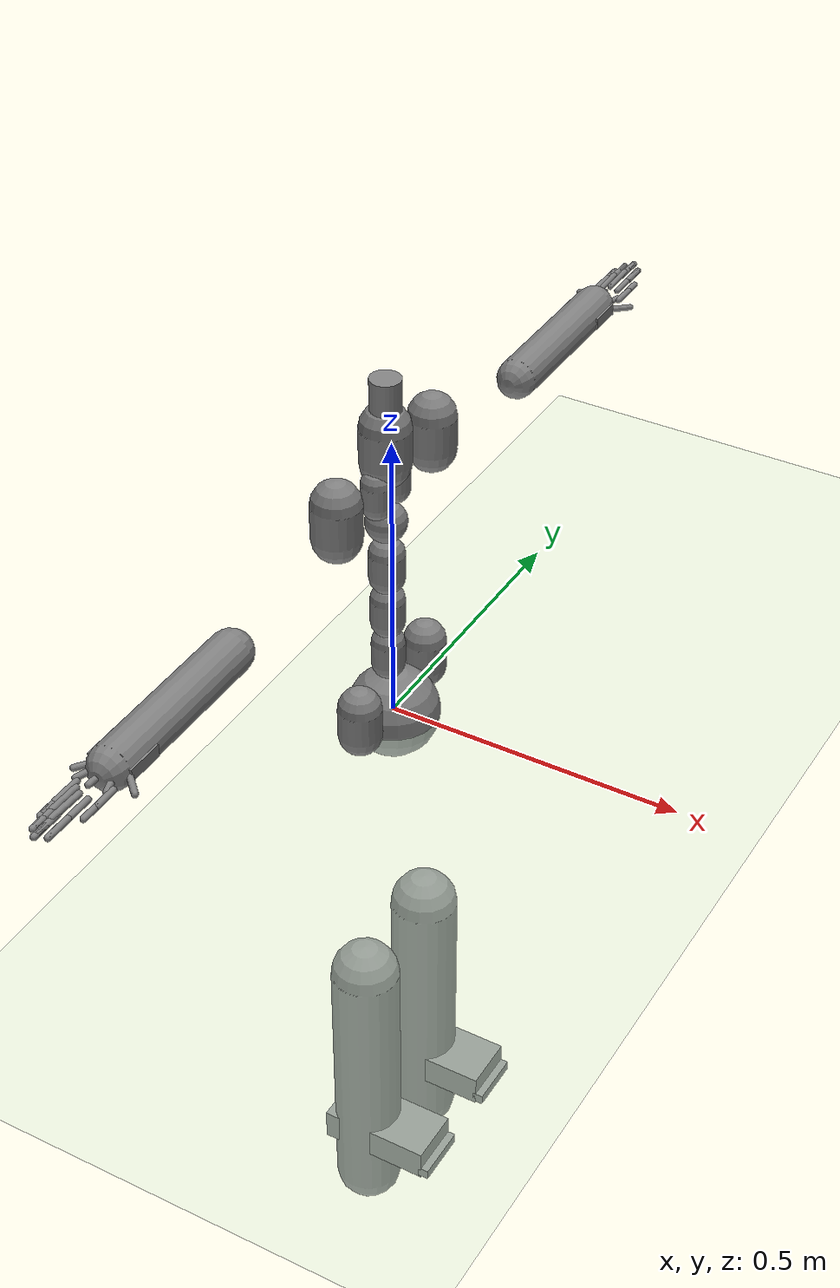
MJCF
<?xml version="1.0" ?>
<mujoco model="humanoid">
  <compiler coordinate="local"/>
  <statistic extent="2" center="0 0 1"/>
  <option timestep="0.00555"/>
  <default>
    <motor ctrlrange="-1 1" ctrllimited="true"/>
    <geom type="capsule" condim="1" friction="1.0 0.05 0.05" solimp=".9 .99 .003" solref=".015 1"/>
    <joint type="hinge" damping="0.1" stiffness="5" armature=".007" limited="true" solimplimit="0 .99 .01"/>
    <site size=".04" group="3"/>
  </default>
  <asset>
    <texture type="skybox" builtin="gradient" rgb1=".4 .5 .6" rgb2="0 0 0" width="100" height="100"/>
    <texture builtin="flat" height="1278" mark="cross" markrgb="1 1 1" name="texgeom" random="0.01" rgb1="0.8 0.6 0.4" rgb2="0.8 0.6 0.4" type="cube" width="127"/>
    <texture builtin="checker" height="100" name="texplane" rgb1="0 0 0" rgb2="0.8 0.8 0.8" type="2d" width="100"/>
    <material name="MatPlane" reflectance="0.5" shininess="1" specular="1" texrepeat="60 60" texture="texplane"/>
    <material name="geom" texture="texgeom" texuniform="true"/>
  </asset>
  <worldbody>
    <light cutoff="100" diffuse="1 1 1" dir="-0 0 -1.3" directional="true" exponent="1" pos="0 0 1.3" specular=".1 .1 .1"/>
    <geom conaffinity="1" condim="3" name="floor" pos="0 0 0" rgba="0.8 0.9 0.8 1" size="100 100 .2" type="plane" material="MatPlane"/>
    <body name="pHipOrigin" pos="0 0 0">
      <freejoint name="pHipOrigin"/>
      <geom type="sphere" contype="1" conaffinity="1" density="4629.6296296296305" size="0.07678" pos="0.0000 0.0000 -0.0000"/>
      <body name="jL5S1" pos="-0.00865186 0 0.07786648">
        <geom type="capsule" contype="1" conaffinity="1" density="1000" fromto="0 0 0.01567 0 0 0.05484" size="0.02742"/>
        <joint name="jL5S1_x" type="hinge" pos="0 0 0" axis="1 0 0" stiffness="500" damping="500" armature="0.02" range="-180.0000 180.0000"/>
        <joint name="jL5S1_y" type="hinge" pos="0 0 0" axis="0 1 0" stiffness="500" damping="500" armature="0.02" range="-180.0000 180.0000"/>
        <joint name="jL5S1_z" type="hinge" pos="0 0 0" axis="0 0 1" stiffness="500" damping="500" armature="0.02" range="-180.0000 180.0000"/>
        <body name="jL4L3" pos="0 0 0.08079895">
          <geom type="capsule" contype="1" conaffinity="1" density="1000" fromto="0 0 0.01616 0 0 0.05656" size="0.02828"/>
          <joint name="jL4L3_x" type="hinge" pos="0 0 0" axis="1 0 0" stiffness="500" damping="500" armature="0.02" range="-180.0000 180.0000"/>
          <joint name="jL4L3_y" type="hinge" pos="0 0 0" axis="0 1 0" stiffness="500" damping="500" armature="0.02" range="-180.0000 180.0000"/>
          <joint name="jL4L3_z" type="hinge" pos="0 0 0" axis="0 0 1" stiffness="500" damping="500" armature="0.02" range="-180.0000 180.0000"/>
          <body name="jL1T12" pos="-0.00064723 0 0.08389296">
            <geom type="capsule" contype="1" conaffinity="1" density="1000" fromto="0 0 0.01678 0 0 0.05873" size="0.02936"/>
            <joint name="jL1T12_x" type="hinge" pos="0 0 0" axis="1 0 0" stiffness="500" damping="500" armature="0.02" range="-180.0000 180.0000"/>
            <joint name="jL1T12_y" type="hinge" pos="0 0 0" axis="0 1 0" stiffness="500" damping="500" armature="0.02" range="-180.0000 180.0000"/>
            <joint name="jL1T12_z" type="hinge" pos="0 0 0" axis="0 0 1" stiffness="500" damping="500" armature="0.02" range="-180.0000 180.0000"/>
            <body name="jT9T8" pos="-0.00064921 0 0.08398600">
              <geom type="sphere" contype="1" conaffinity="1" density="1000" size="0.03360" pos="0.000 0.0000 0.033595"/>
              <joint name="jT9T8_x" type="hinge" pos="0 0 0" axis="1 0 0" stiffness="500" damping="500" armature="0.02" range="-180.0000 180.0000"/>
              <joint name="jT9T8_y" type="hinge" pos="0 0 0" axis="0 1 0" stiffness="500" damping="500" armature="0.02" range="-180.0000 180.0000"/>
              <joint name="jT9T8_z" type="hinge" pos="0 0 0" axis="0 0 1" stiffness="500" damping="500" armature="0.02" range="-180.0000 180.0000"/>
              <body name="jT1C7" pos="0 0 0.11637300">
                <geom type="capsule" contype="1" conaffinity="1" density="1000" fromto="0 0 0.02327 0 0 0.08146" size="0.04073"/>
                <joint name="jT1C7_x" type="hinge" pos="0 0 0" axis="1 0 0" stiffness="500" damping="500" armature="0.02" range="-180.0000 180.0000"/>
                <joint name="jT1C7_y" type="hinge" pos="0 0 0" axis="0 1 0" stiffness="500" damping="500" armature="0.02" range="-180.0000 180.0000"/>
                <joint name="jT1C7_z" type="hinge" pos="0 0 0" axis="0 0 1" stiffness="500" damping="500" armature="0.02" range="-180.0000 180.0000"/>
                <body name="jC1Head" pos="0.00096955 0 0.08218190">
                  <geom type="cylinder" contype="1" conaffinity="1" density="1000" fromto="0 0 0 0 0 0.08219" size="0.02466"/>
                  <joint name="jC1Head_x" type="hinge" pos="0 0 0" axis="1 0 0" stiffness="500" damping="500" armature="0.02" range="-180.0000 180.0000"/>
                  <joint name="jC1Head_y" type="hinge" pos="0 0 0" axis="0 1 0" stiffness="500" damping="500" armature="0.02" range="-180.0000 180.0000"/>
                  <joint name="jC1Head_z" type="hinge" pos="0 0 0" axis="0 0 1" stiffness="500" damping="500" armature="0.02" range="-180.0000 180.0000"/>
                </body>
              </body>
              <body name="jRightT4Shoulder" pos="0 -0.02687128 0.06551808">
                <geom type="capsule" contype="1" conaffinity="1" density="1000" fromto="0 0 0.01416 0 0 0.04957" size="0.02479"/>
                <joint name="jRightT4Shoulder_x" type="hinge" pos="0 0 0" axis="1 0 0" stiffness="500" damping="500" armature="0.02" range="-180.0000 180.0000"/>
                <joint name="jRightT4Shoulder_y" type="hinge" pos="0 0 0" axis="0 1 0" stiffness="500" damping="500" armature="0.02" range="-180.0000 180.0000"/>
                <joint name="jRightT4Shoulder_z" type="hinge" pos="0 0 0" axis="0 0 1" stiffness="500" damping="500" armature="0.02" range="-180.0000 180.0000"/>
                <body name="jRightShoulder" pos="0 -0.11237273 0">
                  <geom type="capsule" contype="1" conaffinity="1" density="1000" fromto="0 0 0.02247 0 0 0.07866" size="0.03933"/>
                  <joint name="jRightShoulder_x" type="hinge" pos="0 0 0" axis="1 0 0" stiffness="500" damping="500" armature="0.02" range="-180.0000 180.0000"/>
                  <joint name="jRightShoulder_y" type="hinge" pos="0 0 0" axis="0 1 0" stiffness="500" damping="500" armature="0.02" range="-180.0000 180.0000"/>
                  <joint name="jRightShoulder_z" type="hinge" pos="0 0 0" axis="0 0 1" stiffness="500" damping="500" armature="0.02" range="-180.0000 180.0000"/>
                  <body name="jRightElbow" pos="0 -0.27885419 0">
                    <geom type="capsule" contype="1" conaffinity="1" density="1000" fromto="0 0 0 0.00000000 -0.27885419 0.00000000" size="0.03346"/>
                    <joint name="jRightElbow_x" type="hinge" pos="0 0 0" axis="1 0 0" stiffness="500" damping="500" armature="0.02" range="-180.0000 180.0000"/>
                    <joint name="jRightElbow_y" type="hinge" pos="0 0 0" axis="0 1 0" stiffness="500" damping="500" armature="0.02" range="-180.0000 180.0000"/>
                    <joint name="jRightElbow_z" type="hinge" pos="0 0 0" axis="0 0 1" stiffness="500" damping="500" armature="0.02" range="-180.0000 180.0000"/>
                    <body name="jRightWrist" pos="0.00010119 -0.25141299 0">
                      <geom density="1000" type="box" pos="0 0 0" size="0.035 0.03 0.01" quat="1.0000 0.0000 0.0000 0.0000"/>
                      <joint name="jRightWrist_x" type="hinge" pos="0 0 0" axis="1 0 0" stiffness="500" damping="500" armature="0.02" range="-180.0000 180.0000"/>
                      <joint name="jRightWrist_y" type="hinge" pos="0 0 0" axis="0 1 0" stiffness="500" damping="500" armature="0.02" range="-180.0000 180.0000"/>
                      <joint name="jRightWrist_z" type="hinge" pos="0 0 0" axis="0 0 1" stiffness="500" damping="500" armature="0.02" range="-180.0000 180.0000"/>
                      <body name="jRightFirstCMC" pos="0.02820307 -0.02703422 -0.00127721">
                        <geom type="capsule" contype="1" conaffinity="1" density="1000" fromto="0 0 0 0.02820307 -0.02703422 -0.00127721" size="0.005"/>
                        <joint name="jRightFirstCMC_x" type="hinge" pos="0 0 0" axis="1 0 0" stiffness="500" damping="500" armature="0.02" range="-180.0000 180.0000"/>
                        <joint name="jRightFirstCMC_y" type="hinge" pos="0 0 0" axis="0 1 0" stiffness="500" damping="500" armature="0.02" range="-180.0000 180.0000"/>
                        <joint name="jRightFirstCMC_z" type="hinge" pos="0 0 0" axis="0 0 1" stiffness="500" damping="500" armature="0.02" range="-180.0000 180.0000"/>
                        <body name="jRightFirstMCP" pos="0.00127837 -0.03607485 0.00076226">
                          <geom type="capsule" contype="1" conaffinity="1" density="1000" fromto="0 0 0 0.00127837 -0.03607485 0.00076226" size="0.005"/>
                          <joint name="jRightFirstMCP_x" type="hinge" pos="0 0 0" axis="1 0 0" stiffness="500" damping="500" armature="0.02" range="-180.0000 180.0000"/>
                          <joint name="jRightFirstMCP_y" type="hinge" pos="0 0 0" axis="0 1 0" stiffness="500" damping="500" armature="0.02" range="-180.0000 180.0000"/>
                          <joint name="jRightFirstMCP_z" type="hinge" pos="0 0 0" axis="0 0 1" stiffness="500" damping="500" armature="0.02" range="-180.0000 180.0000"/>
                          <body name="jRightIP" pos="0 -0.03170414 0">
                            <geom type="capsule" contype="1" conaffinity="1" density="1000" fromto="0 0 0 0.00000000 -0.03170414 0.00000000" size="0.005"/>
                            <joint name="jRightIP_x" type="hinge" pos="0 0 0" axis="1 0 0" stiffness="500" damping="500" armature="0.02" range="-180.0000 180.0000"/>
                            <joint name="jRightIP_y" type="hinge" pos="0 0 0" axis="0 1 0" stiffness="500" damping="500" armature="0.02" range="-180.0000 180.0000"/>
                            <joint name="jRightIP_z" type="hinge" pos="0 0 0" axis="0 0 1" stiffness="500" damping="500" armature="0.02" range="-180.0000 180.0000"/>
                          </body>
                        </body>
                      </body>
                      <body name="jRightSecondCMC" pos="0.01200634 -0.03507873 -0.00061186">
                        <geom type="capsule" contype="1" conaffinity="1" density="1000" fromto="0 0 0 0.01200634 -0.03507873 -0.00061186" size="0.005"/>
                        <joint name="jRightSecondCMC_x" type="hinge" pos="0 0 0" axis="1 0 0" stiffness="500" damping="500" armature="0.02" range="-180.0000 180.0000"/>
                        <joint name="jRightSecondCMC_y" type="hinge" pos="0 0 0" axis="0 1 0" stiffness="500" damping="500" armature="0.02" range="-180.0000 180.0000"/>
                        <joint name="jRightSecondCMC_z" type="hinge" pos="0 0 0" axis="0 0 1" stiffness="500" damping="500" armature="0.02" range="-180.0000 180.0000"/>
                        <body name="jRightSecondMCP" pos="-0.00036549 -0.05829256 -0.00060469">
                          <geom type="capsule" contype="1" conaffinity="1" density="1000" fromto="0 0 0 -0.00036549 -0.05829256 -0.00060469" size="0.005"/>
                          <joint name="jRightSecondMCP_x" type="hinge" pos="0 0 0" axis="1 0 0" stiffness="500" damping="500" armature="0.02" range="-180.0000 180.0000"/>
                          <joint name="jRightSecondMCP_y" type="hinge" pos="0 0 0" axis="0 1 0" stiffness="500" damping="500" armature="0.02" range="-180.0000 180.0000"/>
                          <joint name="jRightSecondMCP_z" type="hinge" pos="0 0 0" axis="0 0 1" stiffness="500" damping="500" armature="0.02" range="-180.0000 180.0000"/>
                          <body name="jRightSecondPIP" pos="0 -0.04163830 0">
                            <geom type="capsule" contype="1" conaffinity="1" density="1000" fromto="0 0 0 0.00000000 -0.04163830 0.00000000" size="0.005"/>
                            <joint name="jRightSecondPIP_x" type="hinge" pos="0 0 0" axis="1 0 0" stiffness="500" damping="500" armature="0.02" range="-180.0000 180.0000"/>
                            <joint name="jRightSecondPIP_y" type="hinge" pos="0 0 0" axis="0 1 0" stiffness="500" damping="500" armature="0.02" range="-180.0000 180.0000"/>
                            <joint name="jRightSecondPIP_z" type="hinge" pos="0 0 0" axis="0 0 1" stiffness="500" damping="500" armature="0.02" range="-180.0000 180.0000"/>
                            <body name="jRightSecondDIP" pos="0 -0.02063258 0">
                              <geom type="capsule" contype="1" conaffinity="1" density="1000" fromto="0 0 0 0.00000000 -0.02063258 0.00000000" size="0.005"/>
                              <joint name="jRightSecondDIP_x" type="hinge" pos="0 0 0" axis="1 0 0" stiffness="500" damping="500" armature="0.02" range="-180.0000 180.0000"/>
                              <joint name="jRightSecondDIP_y" type="hinge" pos="0 0 0" axis="0 1 0" stiffness="500" damping="500" armature="0.02" range="-180.0000 180.0000"/>
                              <joint name="jRightSecondDIP_z" type="hinge" pos="0 0 0" axis="0 0 1" stiffness="500" damping="500" armature="0.02" range="-180.0000 180.0000"/>
                            </body>
                          </body>
                        </body>
                      </body>
                      <body name="jRightThirdCMC" pos="-0.00068240 -0.03690268 0.00155144">
                        <geom type="capsule" contype="1" conaffinity="1" density="1000" fromto="0 0 0 -0.00068240 -0.03690268 0.00155144" size="0.005"/>
                        <joint name="jRightThirdCMC_x" type="hinge" pos="0 0 0" axis="1 0 0" stiffness="500" damping="500" armature="0.02" range="-180.0000 180.0000"/>
                        <joint name="jRightThirdCMC_y" type="hinge" pos="0 0 0" axis="0 1 0" stiffness="500" damping="500" armature="0.02" range="-180.0000 180.0000"/>
                        <joint name="jRightThirdCMC_z" type="hinge" pos="0 0 0" axis="0 0 1" stiffness="500" damping="500" armature="0.02" range="-180.0000 180.0000"/>
                        <body name="jRightThirdMCP" pos="-0.00068372 -0.05664635 0.00154113">
                          <geom type="capsule" contype="1" conaffinity="1" density="1000" fromto="0 0 0 -0.00068372 -0.05664635 0.00154113" size="0.005"/>
                          <joint name="jRightThirdMCP_x" type="hinge" pos="0 0 0" axis="1 0 0" stiffness="500" damping="500" armature="0.02" range="-180.0000 180.0000"/>
                          <joint name="jRightThirdMCP_y" type="hinge" pos="0 0 0" axis="0 1 0" stiffness="500" damping="500" armature="0.02" range="-180.0000 180.0000"/>
                          <joint name="jRightThirdMCP_z" type="hinge" pos="0 0 0" axis="0 0 1" stiffness="500" damping="500" armature="0.02" range="-180.0000 180.0000"/>
                          <body name="jRightThirdPIP" pos="0 -0.04479340 0">
                            <geom type="capsule" contype="1" conaffinity="1" density="1000" fromto="0 0 0 0.00000000 -0.04479340 0.00000000" size="0.005"/>
                            <joint name="jRightThirdPIP_x" type="hinge" pos="0 0 0" axis="1 0 0" stiffness="500" damping="500" armature="0.02" range="-180.0000 180.0000"/>
                            <joint name="jRightThirdPIP_y" type="hinge" pos="0 0 0" axis="0 1 0" stiffness="500" damping="500" armature="0.02" range="-180.0000 180.0000"/>
                            <joint name="jRightThirdPIP_z" type="hinge" pos="0 0 0" axis="0 0 1" stiffness="500" damping="500" armature="0.02" range="-180.0000 180.0000"/>
                            <body name="jRightThirdDIP" pos="0 -0.02447812 0">
                              <geom type="capsule" contype="1" conaffinity="1" density="1000" fromto="0 0 0 0.00000000 -0.02447812 0.00000000" size="0.005"/>
                              <joint name="jRightThirdDIP_x" type="hinge" pos="0 0 0" axis="1 0 0" stiffness="500" damping="500" armature="0.02" range="-180.0000 180.0000"/>
                              <joint name="jRightThirdDIP_y" type="hinge" pos="0 0 0" axis="0 1 0" stiffness="500" damping="500" armature="0.02" range="-180.0000 180.0000"/>
                              <joint name="jRightThirdDIP_z" type="hinge" pos="0 0 0" axis="0 0 1" stiffness="500" damping="500" armature="0.02" range="-180.0000 180.0000"/>
                            </body>
                          </body>
                        </body>
                      </body>
                      <body name="jRightFourthCMC" pos="-0.01252608 -0.03488721 0.00082119">
                        <geom type="capsule" contype="1" conaffinity="1" density="1000" fromto="0 0 0 -0.01252608 -0.03488721 0.00082119" size="0.005"/>
                        <joint name="jRightFourthCMC_x" type="hinge" pos="0 0 0" axis="1 0 0" stiffness="500" damping="500" armature="0.02" range="-180.0000 180.0000"/>
                        <joint name="jRightFourthCMC_y" type="hinge" pos="0 0 0" axis="0 1 0" stiffness="500" damping="500" armature="0.02" range="-180.0000 180.0000"/>
                        <joint name="jRightFourthCMC_z" type="hinge" pos="0 0 0" axis="0 0 1" stiffness="500" damping="500" armature="0.02" range="-180.0000 180.0000"/>
                        <body name="jRightFourthMCP" pos="-0.00036307 -0.04976213 0.00078180">
                          <geom type="capsule" contype="1" conaffinity="1" density="1000" fromto="0 0 0 -0.00036307 -0.04976213 0.00078180" size="0.005"/>
                          <joint name="jRightFourthMCP_x" type="hinge" pos="0 0 0" axis="1 0 0" stiffness="500" damping="500" armature="0.02" range="-180.0000 180.0000"/>
                          <joint name="jRightFourthMCP_y" type="hinge" pos="0 0 0" axis="0 1 0" stiffness="500" damping="500" armature="0.02" range="-180.0000 180.0000"/>
                          <joint name="jRightFourthMCP_z" type="hinge" pos="0 0 0" axis="0 0 1" stiffness="500" damping="500" armature="0.02" range="-180.0000 180.0000"/>
                          <body name="jRightFourthPIP" pos="0 -0.04379107 0">
                            <geom type="capsule" contype="1" conaffinity="1" density="1000" fromto="0 0 0 0.00000000 -0.04379107 0.00000000" size="0.005"/>
                            <joint name="jRightFourthPIP_x" type="hinge" pos="0 0 0" axis="1 0 0" stiffness="500" damping="500" armature="0.02" range="-180.0000 180.0000"/>
                            <joint name="jRightFourthPIP_y" type="hinge" pos="0 0 0" axis="0 1 0" stiffness="500" damping="500" armature="0.02" range="-180.0000 180.0000"/>
                            <joint name="jRightFourthPIP_z" type="hinge" pos="0 0 0" axis="0 0 1" stiffness="500" damping="500" armature="0.02" range="-180.0000 180.0000"/>
                            <body name="jRightFourthDIP" pos="0 -0.02334198 0">
                              <geom type="capsule" contype="1" conaffinity="1" density="1000" fromto="0 0 0 0.00000000 -0.02334198 0.00000000" size="0.005"/>
                              <joint name="jRightFourthDIP_x" type="hinge" pos="0 0 0" axis="1 0 0" stiffness="500" damping="500" armature="0.02" range="-180.0000 180.0000"/>
                              <joint name="jRightFourthDIP_y" type="hinge" pos="0 0 0" axis="0 1 0" stiffness="500" damping="500" armature="0.02" range="-180.0000 180.0000"/>
                              <joint name="jRightFourthDIP_z" type="hinge" pos="0 0 0" axis="0 0 1" stiffness="500" damping="500" armature="0.02" range="-180.0000 180.0000"/>
                            </body>
                          </body>
                        </body>
                      </body>
                      <body name="jRightFifthCMC" pos="-0.01968147 -0.02742388 0.00054099">
                        <geom type="capsule" contype="1" conaffinity="1" density="1000" fromto="0 0 0 -0.01968147 -0.02742388 0.00054099" size="0.005"/>
                        <joint name="jRightFifthCMC_x" type="hinge" pos="0 0 0" axis="1 0 0" stiffness="500" damping="500" armature="0.02" range="-180.0000 180.0000"/>
                        <joint name="jRightFifthCMC_y" type="hinge" pos="0 0 0" axis="0 1 0" stiffness="500" damping="500" armature="0.02" range="-180.0000 180.0000"/>
                        <joint name="jRightFifthCMC_z" type="hinge" pos="0 0 0" axis="0 0 1" stiffness="500" damping="500" armature="0.02" range="-180.0000 180.0000"/>
                        <body name="jRightFifthMCP" pos="-0.00000691 -0.04676935 0.00064360">
                          <geom type="capsule" contype="1" conaffinity="1" density="1000" fromto="0 0 0 -0.00000691 -0.04676935 0.00064360" size="0.005"/>
                          <joint name="jRightFifthMCP_x" type="hinge" pos="0 0 0" axis="1 0 0" stiffness="500" damping="500" armature="0.02" range="-180.0000 180.0000"/>
                          <joint name="jRightFifthMCP_y" type="hinge" pos="0 0 0" axis="0 1 0" stiffness="500" damping="500" armature="0.02" range="-180.0000 180.0000"/>
                          <joint name="jRightFifthMCP_z" type="hinge" pos="0 0 0" axis="0 0 1" stiffness="500" damping="500" armature="0.02" range="-180.0000 180.0000"/>
                          <body name="jRightFifthPIP" pos="0 -0.03664831 0">
                            <geom type="capsule" contype="1" conaffinity="1" density="1000" fromto="0 0 0 0.00000000 -0.03664831 0.00000000" size="0.005"/>
                            <joint name="jRightFifthPIP_x" type="hinge" pos="0 0 0" axis="1 0 0" stiffness="500" damping="500" armature="0.02" range="-180.0000 180.0000"/>
                            <joint name="jRightFifthPIP_y" type="hinge" pos="0 0 0" axis="0 1 0" stiffness="500" damping="500" armature="0.02" range="-180.0000 180.0000"/>
                            <joint name="jRightFifthPIP_z" type="hinge" pos="0 0 0" axis="0 0 1" stiffness="500" damping="500" armature="0.02" range="-180.0000 180.0000"/>
                            <body name="jRightFifthDIP" pos="0 -0.01991466 0">
                              <geom type="capsule" contype="1" conaffinity="1" density="1000" fromto="0 0 0 0.00000000 -0.01991466 0.00000000" size="0.005"/>
                              <joint name="jRightFifthDIP_x" type="hinge" pos="0 0 0" axis="1 0 0" stiffness="500" damping="500" armature="0.02" range="-180.0000 180.0000"/>
                              <joint name="jRightFifthDIP_y" type="hinge" pos="0 0 0" axis="0 1 0" stiffness="500" damping="500" armature="0.02" range="-180.0000 180.0000"/>
                              <joint name="jRightFifthDIP_z" type="hinge" pos="0 0 0" axis="0 0 1" stiffness="500" damping="500" armature="0.02" range="-180.0000 180.0000"/>
                            </body>
                          </body>
                        </body>
                      </body>
                    </body>
                  </body>
                </body>
              </body>
              <body name="jLeftT4Shoulder" pos="0 0.02670733 0.06511834">
                <geom type="capsule" contype="1" conaffinity="1" density="1000" fromto="0 0 0.01408 0 0 0.04927" size="0.02463"/>
                <joint name="jLeftT4Shoulder_x" type="hinge" pos="0 0 0" axis="1 0 0" stiffness="500" damping="500" armature="0.02" range="-180.0000 180.0000"/>
                <joint name="jLeftT4Shoulder_y" type="hinge" pos="0 0 0" axis="0 1 0" stiffness="500" damping="500" armature="0.02" range="-180.0000 180.0000"/>
                <joint name="jLeftT4Shoulder_z" type="hinge" pos="0 0 0" axis="0 0 1" stiffness="500" damping="500" armature="0.02" range="-180.0000 180.0000"/>
                <body name="jLeftShoulder" pos="0 0.11226948 0">
                  <geom type="capsule" contype="1" conaffinity="1" density="1000" fromto="0 0 0.02245 0 0 0.07859" size="0.03929"/>
                  <joint name="jLeftShoulder_x" type="hinge" pos="0 0 0" axis="1 0 0" stiffness="500" damping="500" armature="0.02" range="-180.0000 180.0000"/>
                  <joint name="jLeftShoulder_y" type="hinge" pos="0 0 0" axis="0 1 0" stiffness="500" damping="500" armature="0.02" range="-180.0000 180.0000"/>
                  <joint name="jLeftShoulder_z" type="hinge" pos="0 0 0" axis="0 0 1" stiffness="500" damping="500" armature="0.02" range="-180.0000 180.0000"/>
                  <body name="jLeftElbow" pos="0 0.27798092 0">
                    <geom type="capsule" contype="1" conaffinity="1" density="1000" fromto="0 0 0 0.00000000 0.27798092 0.00000000" size="0.03336"/>
                    <joint name="jLeftElbow_x" type="hinge" pos="0 0 0" axis="1 0 0" stiffness="500" damping="500" armature="0.02" range="-180.0000 180.0000"/>
                    <joint name="jLeftElbow_y" type="hinge" pos="0 0 0" axis="0 1 0" stiffness="500" damping="500" armature="0.02" range="-180.0000 180.0000"/>
                    <joint name="jLeftElbow_z" type="hinge" pos="0 0 0" axis="0 0 1" stiffness="500" damping="500" armature="0.02" range="-180.0000 180.0000"/>
                    <body name="jLeftWrist" pos="0.00010125 0.25157512 0">
                      <geom density="1000" type="box" pos="0 0 0" size="0.035 0.03 0.01" quat="1.0000 0.0000 0.0000 0.0000"/>
                      <joint name="jLeftWrist_x" type="hinge" pos="0 0 0" axis="1 0 0" stiffness="500" damping="500" armature="0.02" range="-180.0000 180.0000"/>
                      <joint name="jLeftWrist_y" type="hinge" pos="0 0 0" axis="0 1 0" stiffness="500" damping="500" armature="0.02" range="-180.0000 180.0000"/>
                      <joint name="jLeftWrist_z" type="hinge" pos="0 0 0" axis="0 0 1" stiffness="500" damping="500" armature="0.02" range="-180.0000 180.0000"/>
                      <body name="jLeftFirstCMC" pos="0.02760416 0.02766935 -0.00123547">
                        <geom type="capsule" contype="1" conaffinity="1" density="1000" fromto="0 0 0 0.02760416 0.02766935 -0.00123547" size="0.005"/>
                        <joint name="jLeftFirstCMC_x" type="hinge" pos="0 0 0" axis="1 0 0" stiffness="500" damping="500" armature="0.02" range="-180.0000 180.0000"/>
                        <joint name="jLeftFirstCMC_y" type="hinge" pos="0 0 0" axis="0 1 0" stiffness="500" damping="500" armature="0.02" range="-180.0000 180.0000"/>
                        <joint name="jLeftFirstCMC_z" type="hinge" pos="0 0 0" axis="0 0 1" stiffness="500" damping="500" armature="0.02" range="-180.0000 180.0000"/>
                        <body name="jLeftFirstMCP" pos="0.00126606 0.03607404 0.00074285">
                          <geom type="capsule" contype="1" conaffinity="1" density="1000" fromto="0 0 0 0.00126606 0.03607404 0.00074285" size="0.005"/>
                          <joint name="jLeftFirstMCP_x" type="hinge" pos="0 0 0" axis="1 0 0" stiffness="500" damping="500" armature="0.02" range="-180.0000 180.0000"/>
                          <joint name="jLeftFirstMCP_y" type="hinge" pos="0 0 0" axis="0 1 0" stiffness="500" damping="500" armature="0.02" range="-180.0000 180.0000"/>
                          <joint name="jLeftFirstMCP_z" type="hinge" pos="0 0 0" axis="0 0 1" stiffness="500" damping="500" armature="0.02" range="-180.0000 180.0000"/>
                          <body name="jLeftIP" pos="0 0.03170414 0">
                            <geom type="capsule" contype="1" conaffinity="1" density="1000" fromto="0 0 0 0.00000000 0.03170414 0.00000000" size="0.005"/>
                            <joint name="jLeftIP_x" type="hinge" pos="0 0 0" axis="1 0 0" stiffness="500" damping="500" armature="0.02" range="-180.0000 180.0000"/>
                            <joint name="jLeftIP_y" type="hinge" pos="0 0 0" axis="0 1 0" stiffness="500" damping="500" armature="0.02" range="-180.0000 180.0000"/>
                            <joint name="jLeftIP_z" type="hinge" pos="0 0 0" axis="0 0 1" stiffness="500" damping="500" armature="0.02" range="-180.0000 180.0000"/>
                          </body>
                        </body>
                      </body>
                      <body name="jLeftSecondCMC" pos="0.01214463 0.03501419 -0.00061691">
                        <geom type="capsule" contype="1" conaffinity="1" density="1000" fromto="0 0 0 0.01214463 0.03501419 -0.00061691" size="0.005"/>
                        <joint name="jLeftSecondCMC_x" type="hinge" pos="0 0 0" axis="1 0 0" stiffness="500" damping="500" armature="0.02" range="-180.0000 180.0000"/>
                        <joint name="jLeftSecondCMC_y" type="hinge" pos="0 0 0" axis="0 1 0" stiffness="500" damping="500" armature="0.02" range="-180.0000 180.0000"/>
                        <joint name="jLeftSecondCMC_z" type="hinge" pos="0 0 0" axis="0 0 1" stiffness="500" damping="500" armature="0.02" range="-180.0000 180.0000"/>
                        <body name="jLeftSecondMCP" pos="-0.00031868 0.05829375 -0.00061216">
                          <geom type="capsule" contype="1" conaffinity="1" density="1000" fromto="0 0 0 -0.00031868 0.05829375 -0.00061216" size="0.005"/>
                          <joint name="jLeftSecondMCP_x" type="hinge" pos="0 0 0" axis="1 0 0" stiffness="500" damping="500" armature="0.02" range="-180.0000 180.0000"/>
                          <joint name="jLeftSecondMCP_y" type="hinge" pos="0 0 0" axis="0 1 0" stiffness="500" damping="500" armature="0.02" range="-180.0000 180.0000"/>
                          <joint name="jLeftSecondMCP_z" type="hinge" pos="0 0 0" axis="0 0 1" stiffness="500" damping="500" armature="0.02" range="-180.0000 180.0000"/>
                          <body name="jLeftSecondPIP" pos="0 0.04163830 0">
                            <geom type="capsule" contype="1" conaffinity="1" density="1000" fromto="0 0 0 0.00000000 0.04163830 0.00000000" size="0.005"/>
                            <joint name="jLeftSecondPIP_x" type="hinge" pos="0 0 0" axis="1 0 0" stiffness="500" damping="500" armature="0.02" range="-180.0000 180.0000"/>
                            <joint name="jLeftSecondPIP_y" type="hinge" pos="0 0 0" axis="0 1 0" stiffness="500" damping="500" armature="0.02" range="-180.0000 180.0000"/>
                            <joint name="jLeftSecondPIP_z" type="hinge" pos="0 0 0" axis="0 0 1" stiffness="500" damping="500" armature="0.02" range="-180.0000 180.0000"/>
                            <body name="jLeftSecondDIP" pos="0 0.02063258 0">
                              <geom type="capsule" contype="1" conaffinity="1" density="1000" fromto="0 0 0 0.00000000 0.02063258 0.00000000" size="0.005"/>
                              <joint name="jLeftSecondDIP_x" type="hinge" pos="0 0 0" axis="1 0 0" stiffness="500" damping="500" armature="0.02" range="-180.0000 180.0000"/>
                              <joint name="jLeftSecondDIP_y" type="hinge" pos="0 0 0" axis="0 1 0" stiffness="500" damping="500" armature="0.02" range="-180.0000 180.0000"/>
                              <joint name="jLeftSecondDIP_z" type="hinge" pos="0 0 0" axis="0 0 1" stiffness="500" damping="500" armature="0.02" range="-180.0000 180.0000"/>
                            </body>
                          </body>
                        </body>
                      </body>
                      <body name="jLeftThirdCMC" pos="-0.00068641 0.03690599 0.00149973">
                        <geom type="capsule" contype="1" conaffinity="1" density="1000" fromto="0 0 0 -0.00068641 0.03690599 0.00149973" size="0.005"/>
                        <joint name="jLeftThirdCMC_x" type="hinge" pos="0 0 0" axis="1 0 0" stiffness="500" damping="500" armature="0.02" range="-180.0000 180.0000"/>
                        <joint name="jLeftThirdCMC_y" type="hinge" pos="0 0 0" axis="0 1 0" stiffness="500" damping="500" armature="0.02" range="-180.0000 180.0000"/>
                        <joint name="jLeftThirdCMC_z" type="hinge" pos="0 0 0" axis="0 0 1" stiffness="500" damping="500" armature="0.02" range="-180.0000 180.0000"/>
                        <body name="jLeftThirdMCP" pos="-0.00068924 0.05664745 0.00151015">
                          <geom type="capsule" contype="1" conaffinity="1" density="1000" fromto="0 0 0 -0.00068924 0.05664745 0.00151015" size="0.005"/>
                          <joint name="jLeftThirdMCP_x" type="hinge" pos="0 0 0" axis="1 0 0" stiffness="500" damping="500" armature="0.02" range="-180.0000 180.0000"/>
                          <joint name="jLeftThirdMCP_y" type="hinge" pos="0 0 0" axis="0 1 0" stiffness="500" damping="500" armature="0.02" range="-180.0000 180.0000"/>
                          <joint name="jLeftThirdMCP_z" type="hinge" pos="0 0 0" axis="0 0 1" stiffness="500" damping="500" armature="0.02" range="-180.0000 180.0000"/>
                          <body name="jLeftThirdPIP" pos="0 0.04479340 0">
                            <geom type="capsule" contype="1" conaffinity="1" density="1000" fromto="0 0 0 0.00000000 0.04479340 0.00000000" size="0.005"/>
                            <joint name="jLeftThirdPIP_x" type="hinge" pos="0 0 0" axis="1 0 0" stiffness="500" damping="500" armature="0.02" range="-180.0000 180.0000"/>
                            <joint name="jLeftThirdPIP_y" type="hinge" pos="0 0 0" axis="0 1 0" stiffness="500" damping="500" armature="0.02" range="-180.0000 180.0000"/>
                            <joint name="jLeftThirdPIP_z" type="hinge" pos="0 0 0" axis="0 0 1" stiffness="500" damping="500" armature="0.02" range="-180.0000 180.0000"/>
                            <body name="jLeftThirdDIP" pos="0 0.02447812 0">
                              <geom type="capsule" contype="1" conaffinity="1" density="1000" fromto="0 0 0 0.00000000 0.02447812 0.00000000" size="0.005"/>
                              <joint name="jLeftThirdDIP_x" type="hinge" pos="0 0 0" axis="1 0 0" stiffness="500" damping="500" armature="0.02" range="-180.0000 180.0000"/>
                              <joint name="jLeftThirdDIP_y" type="hinge" pos="0 0 0" axis="0 1 0" stiffness="500" damping="500" armature="0.02" range="-180.0000 180.0000"/>
                              <joint name="jLeftThirdDIP_z" type="hinge" pos="0 0 0" axis="0 0 1" stiffness="500" damping="500" armature="0.02" range="-180.0000 180.0000"/>
                            </body>
                          </body>
                        </body>
                      </body>
                      <body name="jLeftFourthCMC" pos="-0.01298571 0.03470876 0.00087661">
                        <geom type="capsule" contype="1" conaffinity="1" density="1000" fromto="0 0 0 -0.01298571 0.03470876 0.00087661" size="0.005"/>
                        <joint name="jLeftFourthCMC_x" type="hinge" pos="0 0 0" axis="1 0 0" stiffness="500" damping="500" armature="0.02" range="-180.0000 180.0000"/>
                        <joint name="jLeftFourthCMC_y" type="hinge" pos="0 0 0" axis="0 1 0" stiffness="500" damping="500" armature="0.02" range="-180.0000 180.0000"/>
                        <joint name="jLeftFourthCMC_z" type="hinge" pos="0 0 0" axis="0 0 1" stiffness="500" damping="500" armature="0.02" range="-180.0000 180.0000"/>
                        <body name="jLeftFourthMCP" pos="-0.00039045 0.04975928 0.00082685">
                          <geom type="capsule" contype="1" conaffinity="1" density="1000" fromto="0 0 0 -0.00039045 0.04975928 0.00082685" size="0.005"/>
                          <joint name="jLeftFourthMCP_x" type="hinge" pos="0 0 0" axis="1 0 0" stiffness="500" damping="500" armature="0.02" range="-180.0000 180.0000"/>
                          <joint name="jLeftFourthMCP_y" type="hinge" pos="0 0 0" axis="0 1 0" stiffness="500" damping="500" armature="0.02" range="-180.0000 180.0000"/>
                          <joint name="jLeftFourthMCP_z" type="hinge" pos="0 0 0" axis="0 0 1" stiffness="500" damping="500" armature="0.02" range="-180.0000 180.0000"/>
                          <body name="jLeftFourthPIP" pos="0 0.04379107 0">
                            <geom type="capsule" contype="1" conaffinity="1" density="1000" fromto="0 0 0 0.00000000 0.04379107 0.00000000" size="0.005"/>
                            <joint name="jLeftFourthPIP_x" type="hinge" pos="0 0 0" axis="1 0 0" stiffness="500" damping="500" armature="0.02" range="-180.0000 180.0000"/>
                            <joint name="jLeftFourthPIP_y" type="hinge" pos="0 0 0" axis="0 1 0" stiffness="500" damping="500" armature="0.02" range="-180.0000 180.0000"/>
                            <joint name="jLeftFourthPIP_z" type="hinge" pos="0 0 0" axis="0 0 1" stiffness="500" damping="500" armature="0.02" range="-180.0000 180.0000"/>
                            <body name="jLeftFourthDIP" pos="0 0.02334198 0">
                              <geom type="capsule" contype="1" conaffinity="1" density="1000" fromto="0 0 0 0.00000000 0.02334198 0.00000000" size="0.005"/>
                              <joint name="jLeftFourthDIP_x" type="hinge" pos="0 0 0" axis="1 0 0" stiffness="500" damping="500" armature="0.02" range="-180.0000 180.0000"/>
                              <joint name="jLeftFourthDIP_y" type="hinge" pos="0 0 0" axis="0 1 0" stiffness="500" damping="500" armature="0.02" range="-180.0000 180.0000"/>
                              <joint name="jLeftFourthDIP_z" type="hinge" pos="0 0 0" axis="0 0 1" stiffness="500" damping="500" armature="0.02" range="-180.0000 180.0000"/>
                            </body>
                          </body>
                        </body>
                      </body>
                      <body name="jLeftFifthCMC" pos="-0.02027770 0.02699033 0.00054968">
                        <geom type="capsule" contype="1" conaffinity="1" density="1000" fromto="0 0 0 -0.02027770 0.02699033 0.00054968" size="0.005"/>
                        <joint name="jLeftFifthCMC_x" type="hinge" pos="0 0 0" axis="1 0 0" stiffness="500" damping="500" armature="0.02" range="-180.0000 180.0000"/>
                        <joint name="jLeftFifthCMC_y" type="hinge" pos="0 0 0" axis="0 1 0" stiffness="500" damping="500" armature="0.02" range="-180.0000 180.0000"/>
                        <joint name="jLeftFifthCMC_z" type="hinge" pos="0 0 0" axis="0 0 1" stiffness="500" damping="500" armature="0.02" range="-180.0000 180.0000"/>
                        <body name="jLeftFifthMCP" pos="-0.00001326 0.04676807 0.00067296">
                          <geom type="capsule" contype="1" conaffinity="1" density="1000" fromto="0 0 0 -0.00001326 0.04676807 0.00067296" size="0.005"/>
                          <joint name="jLeftFifthMCP_x" type="hinge" pos="0 0 0" axis="1 0 0" stiffness="500" damping="500" armature="0.02" range="-180.0000 180.0000"/>
                          <joint name="jLeftFifthMCP_y" type="hinge" pos="0 0 0" axis="0 1 0" stiffness="500" damping="500" armature="0.02" range="-180.0000 180.0000"/>
                          <joint name="jLeftFifthMCP_z" type="hinge" pos="0 0 0" axis="0 0 1" stiffness="500" damping="500" armature="0.02" range="-180.0000 180.0000"/>
                          <body name="jLeftFifthPIP" pos="0 0.03664831 0">
                            <geom type="capsule" contype="1" conaffinity="1" density="1000" fromto="0 0 0 0.00000000 0.03664831 0.00000000" size="0.005"/>
                            <joint name="jLeftFifthPIP_x" type="hinge" pos="0 0 0" axis="1 0 0" stiffness="500" damping="500" armature="0.02" range="-180.0000 180.0000"/>
                            <joint name="jLeftFifthPIP_y" type="hinge" pos="0 0 0" axis="0 1 0" stiffness="500" damping="500" armature="0.02" range="-180.0000 180.0000"/>
                            <joint name="jLeftFifthPIP_z" type="hinge" pos="0 0 0" axis="0 0 1" stiffness="500" damping="500" armature="0.02" range="-180.0000 180.0000"/>
                            <body name="jLeftFifthDIP" pos="0 0.01991466 0">
                              <geom type="capsule" contype="1" conaffinity="1" density="1000" fromto="0 0 0 0.00000000 0.01991466 0.00000000" size="0.005"/>
                              <joint name="jLeftFifthDIP_x" type="hinge" pos="0 0 0" axis="1 0 0" stiffness="500" damping="500" armature="0.02" range="-180.0000 180.0000"/>
                              <joint name="jLeftFifthDIP_y" type="hinge" pos="0 0 0" axis="0 1 0" stiffness="500" damping="500" armature="0.02" range="-180.0000 180.0000"/>
                              <joint name="jLeftFifthDIP_z" type="hinge" pos="0 0 0" axis="0 0 1" stiffness="500" damping="500" armature="0.02" range="-180.0000 180.0000"/>
                            </body>
                          </body>
                        </body>
                      </body>
                    </body>
                  </body>
                </body>
              </body>
            </body>
          </body>
        </body>
      </body>
      <body name="jRightHip" pos="-0.00017216 -0.10216796 0.00154986">
        <geom type="capsule" contype="1" conaffinity="1" density="1000" fromto="0 0 0.02044 0 0 0.07153" size="0.03576"/>
        <joint name="jRightHip_x" type="hinge" pos="0 0 0" axis="1 0 0" stiffness="500" damping="500" armature="0.02" range="-180.0000 180.0000"/>
        <joint name="jRightHip_y" type="hinge" pos="0 0 0" axis="0 1 0" stiffness="500" damping="500" armature="0.02" range="-180.0000 180.0000"/>
        <joint name="jRightHip_z" type="hinge" pos="0 0 0" axis="0 0 1" stiffness="500" damping="500" armature="0.02" range="-180.0000 180.0000"/>
        <body name="jRightKnee" pos="0.00006153 0 -0.51601231">
          <geom type="capsule" contype="1" conaffinity="1" density="1000" fromto="0 0 0 0.00006153 0.00000000 -0.51601231" size="0.06000"/>
          <joint name="jRightKnee_x" type="hinge" pos="0 0 0" axis="1 0 0" stiffness="500" damping="500" armature="0.02" range="-180.0000 180.0000"/>
          <joint name="jRightKnee_y" type="hinge" pos="0 0 0" axis="0 1 0" stiffness="500" damping="500" armature="0.02" range="-180.0000 180.0000"/>
          <joint name="jRightKnee_z" type="hinge" pos="0 0 0" axis="0 0 1" stiffness="500" damping="500" armature="0.02" range="-180.0000 180.0000"/>
          <body name="jRightAnkle" pos="0.00040040 0 -0.35460479">
            <geom density="1000" type="box" pos="0.04 0. -0.03" size="0.1 0.05 0.03" quat="1.0 0 0 0"/>
            <joint name="jRightAnkle_x" type="hinge" pos="0 0 0" axis="1 0 0" stiffness="500" damping="500" armature="0.02" range="-180.0000 180.0000"/>
            <joint name="jRightAnkle_y" type="hinge" pos="0 0 0" axis="0 1 0" stiffness="500" damping="500" armature="0.02" range="-180.0000 180.0000"/>
            <joint name="jRightAnkle_z" type="hinge" pos="0 0 0" axis="0 0 1" stiffness="500" damping="500" armature="0.02" range="-180.0000 180.0000"/>
            <body name="jRightBallFoot" pos="0.14408959 0 -0.06610269">
              <geom density="1000" type="box" pos="0 0 0.02" size="0.01 0.05 0.01" quat="1.0 0 0 0"/>
              <joint name="jRightBallFoot_x" type="hinge" pos="0 0 0" axis="1 0 0" stiffness="500" damping="500" armature="0.02" range="-180.0000 180.0000"/>
              <joint name="jRightBallFoot_y" type="hinge" pos="0 0 0" axis="0 1 0" stiffness="500" damping="500" armature="0.02" range="-180.0000 180.0000"/>
              <joint name="jRightBallFoot_z" type="hinge" pos="0 0 0" axis="0 0 1" stiffness="500" damping="500" armature="0.02" range="-180.0000 180.0000"/>
            </body>
          </body>
        </body>
      </body>
      <body name="jLeftHip" pos="-0.00016957 0.10194553 0.00152603">
        <geom type="capsule" contype="1" conaffinity="1" density="1000" fromto="0 0 0.02039 0 0 0.07137" size="0.03568"/>
        <joint name="jLeftHip_x" type="hinge" pos="0 0 0" axis="1 0 0" stiffness="500" damping="500" armature="0.02" range="-180.0000 180.0000"/>
        <joint name="jLeftHip_y" type="hinge" pos="0 0 0" axis="0 1 0" stiffness="500" damping="500" armature="0.02" range="-180.0000 180.0000"/>
        <joint name="jLeftHip_z" type="hinge" pos="0 0 0" axis="0 0 1" stiffness="500" damping="500" armature="0.02" range="-180.0000 180.0000"/>
        <body name="jLeftKnee" pos="0.00006157 0 -0.51642251">
          <geom type="capsule" contype="1" conaffinity="1" density="1000" fromto="0 0 0 0.00006157 0.00000000 -0.51642251" size="0.06000"/>
          <joint name="jLeftKnee_x" type="hinge" pos="0 0 0" axis="1 0 0" stiffness="500" damping="500" armature="0.02" range="-180.0000 180.0000"/>
          <joint name="jLeftKnee_y" type="hinge" pos="0 0 0" axis="0 1 0" stiffness="500" damping="500" armature="0.02" range="-180.0000 180.0000"/>
          <joint name="jLeftKnee_z" type="hinge" pos="0 0 0" axis="0 0 1" stiffness="500" damping="500" armature="0.02" range="-180.0000 180.0000"/>
          <body name="jLeftAnkle" pos="0.00040040 0 -0.35460482">
            <geom density="1000" type="box" pos="0.04 0. -0.03" size="0.1 0.05 0.03" quat="1.0 0 0 0"/>
            <joint name="jLeftAnkle_x" type="hinge" pos="0 0 0" axis="1 0 0" stiffness="500" damping="500" armature="0.02" range="-180.0000 180.0000"/>
            <joint name="jLeftAnkle_y" type="hinge" pos="0 0 0" axis="0 1 0" stiffness="500" damping="500" armature="0.02" range="-180.0000 180.0000"/>
            <joint name="jLeftAnkle_z" type="hinge" pos="0 0 0" axis="0 0 1" stiffness="500" damping="500" armature="0.02" range="-180.0000 180.0000"/>
            <body name="jLeftBallFoot" pos="0.14408957 0 -0.06610268">
              <geom density="1000" type="box" pos="0 0 0.02" size="0.01 0.05 0.01" quat="1.0 0 0 0"/>
              <joint name="jLeftBallFoot_x" type="hinge" pos="0 0 0" axis="1 0 0" stiffness="500" damping="500" armature="0.02" range="-180.0000 180.0000"/>
              <joint name="jLeftBallFoot_y" type="hinge" pos="0 0 0" axis="0 1 0" stiffness="500" damping="500" armature="0.02" range="-180.0000 180.0000"/>
              <joint name="jLeftBallFoot_z" type="hinge" pos="0 0 0" axis="0 0 1" stiffness="500" damping="500" armature="0.02" range="-180.0000 180.0000"/>
            </body>
          </body>
        </body>
      </body>
    </body>
  </worldbody>
  <actuator>
    <motor name="jL5S1_x" joint="jL5S1_x" gear="500"/>
    <motor name="jL5S1_y" joint="jL5S1_y" gear="500"/>
    <motor name="jL5S1_z" joint="jL5S1_z" gear="500"/>
    <motor name="jL4L3_x" joint="jL4L3_x" gear="500"/>
    <motor name="jL4L3_y" joint="jL4L3_y" gear="500"/>
    <motor name="jL4L3_z" joint="jL4L3_z" gear="500"/>
    <motor name="jL1T12_x" joint="jL1T12_x" gear="500"/>
    <motor name="jL1T12_y" joint="jL1T12_y" gear="500"/>
    <motor name="jL1T12_z" joint="jL1T12_z" gear="500"/>
    <motor name="jT9T8_x" joint="jT9T8_x" gear="500"/>
    <motor name="jT9T8_y" joint="jT9T8_y" gear="500"/>
    <motor name="jT9T8_z" joint="jT9T8_z" gear="500"/>
    <motor name="jT1C7_x" joint="jT1C7_x" gear="500"/>
    <motor name="jT1C7_y" joint="jT1C7_y" gear="500"/>
    <motor name="jT1C7_z" joint="jT1C7_z" gear="500"/>
    <motor name="jC1Head_x" joint="jC1Head_x" gear="500"/>
    <motor name="jC1Head_y" joint="jC1Head_y" gear="500"/>
    <motor name="jC1Head_z" joint="jC1Head_z" gear="500"/>
    <motor name="jRightT4Shoulder_x" joint="jRightT4Shoulder_x" gear="500"/>
    <motor name="jRightT4Shoulder_y" joint="jRightT4Shoulder_y" gear="500"/>
    <motor name="jRightT4Shoulder_z" joint="jRightT4Shoulder_z" gear="500"/>
    <motor name="jRightShoulder_x" joint="jRightShoulder_x" gear="500"/>
    <motor name="jRightShoulder_y" joint="jRightShoulder_y" gear="500"/>
    <motor name="jRightShoulder_z" joint="jRightShoulder_z" gear="500"/>
    <motor name="jRightElbow_x" joint="jRightElbow_x" gear="500"/>
    <motor name="jRightElbow_y" joint="jRightElbow_y" gear="500"/>
    <motor name="jRightElbow_z" joint="jRightElbow_z" gear="500"/>
    <motor name="jRightWrist_x" joint="jRightWrist_x" gear="500"/>
    <motor name="jRightWrist_y" joint="jRightWrist_y" gear="500"/>
    <motor name="jRightWrist_z" joint="jRightWrist_z" gear="500"/>
    <motor name="jLeftT4Shoulder_x" joint="jLeftT4Shoulder_x" gear="500"/>
    <motor name="jLeftT4Shoulder_y" joint="jLeftT4Shoulder_y" gear="500"/>
    <motor name="jLeftT4Shoulder_z" joint="jLeftT4Shoulder_z" gear="500"/>
    <motor name="jLeftShoulder_x" joint="jLeftShoulder_x" gear="500"/>
    <motor name="jLeftShoulder_y" joint="jLeftShoulder_y" gear="500"/>
    <motor name="jLeftShoulder_z" joint="jLeftShoulder_z" gear="500"/>
    <motor name="jLeftElbow_x" joint="jLeftElbow_x" gear="500"/>
    <motor name="jLeftElbow_y" joint="jLeftElbow_y" gear="500"/>
    <motor name="jLeftElbow_z" joint="jLeftElbow_z" gear="500"/>
    <motor name="jLeftWrist_x" joint="jLeftWrist_x" gear="500"/>
    <motor name="jLeftWrist_y" joint="jLeftWrist_y" gear="500"/>
    <motor name="jLeftWrist_z" joint="jLeftWrist_z" gear="500"/>
    <motor name="jRightHip_x" joint="jRightHip_x" gear="500"/>
    <motor name="jRightHip_y" joint="jRightHip_y" gear="500"/>
    <motor name="jRightHip_z" joint="jRightHip_z" gear="500"/>
    <motor name="jRightKnee_x" joint="jRightKnee_x" gear="500"/>
    <motor name="jRightKnee_y" joint="jRightKnee_y" gear="500"/>
    <motor name="jRightKnee_z" joint="jRightKnee_z" gear="500"/>
    <motor name="jRightAnkle_x" joint="jRightAnkle_x" gear="500"/>
    <motor name="jRightAnkle_y" joint="jRightAnkle_y" gear="500"/>
    <motor name="jRightAnkle_z" joint="jRightAnkle_z" gear="500"/>
    <motor name="jRightBallFoot_x" joint="jRightBallFoot_x" gear="500"/>
    <motor name="jRightBallFoot_y" joint="jRightBallFoot_y" gear="500"/>
    <motor name="jRightBallFoot_z" joint="jRightBallFoot_z" gear="500"/>
    <motor name="jLeftHip_x" joint="jLeftHip_x" gear="500"/>
    <motor name="jLeftHip_y" joint="jLeftHip_y" gear="500"/>
    <motor name="jLeftHip_z" joint="jLeftHip_z" gear="500"/>
    <motor name="jLeftKnee_x" joint="jLeftKnee_x" gear="500"/>
    <motor name="jLeftKnee_y" joint="jLeftKnee_y" gear="500"/>
    <motor name="jLeftKnee_z" joint="jLeftKnee_z" gear="500"/>
    <motor name="jLeftAnkle_x" joint="jLeftAnkle_x" gear="500"/>
    <motor name="jLeftAnkle_y" joint="jLeftAnkle_y" gear="500"/>
    <motor name="jLeftAnkle_z" joint="jLeftAnkle_z" gear="500"/>
    <motor name="jLeftBallFoot_x" joint="jLeftBallFoot_x" gear="500"/>
    <motor name="jLeftBallFoot_y" joint="jLeftBallFoot_y" gear="500"/>
    <motor name="jLeftBallFoot_z" joint="jLeftBallFoot_z" gear="500"/>
    <motor name="jLeftFirstCMC_x" joint="jLeftFirstCMC_x" gear="500"/>
    <motor name="jLeftFirstCMC_y" joint="jLeftFirstCMC_y" gear="500"/>
    <motor name="jLeftFirstCMC_z" joint="jLeftFirstCMC_z" gear="500"/>
    <motor name="jLeftFirstMCP_x" joint="jLeftFirstMCP_x" gear="500"/>
    <motor name="jLeftFirstMCP_y" joint="jLeftFirstMCP_y" gear="500"/>
    <motor name="jLeftFirstMCP_z" joint="jLeftFirstMCP_z" gear="500"/>
    <motor name="jLeftIP_x" joint="jLeftIP_x" gear="500"/>
    <motor name="jLeftIP_y" joint="jLeftIP_y" gear="500"/>
    <motor name="jLeftIP_z" joint="jLeftIP_z" gear="500"/>
    <motor name="jLeftSecondCMC_x" joint="jLeftSecondCMC_x" gear="500"/>
    <motor name="jLeftSecondCMC_y" joint="jLeftSecondCMC_y" gear="500"/>
    <motor name="jLeftSecondCMC_z" joint="jLeftSecondCMC_z" gear="500"/>
    <motor name="jLeftSecondMCP_x" joint="jLeftSecondMCP_x" gear="500"/>
    <motor name="jLeftSecondMCP_y" joint="jLeftSecondMCP_y" gear="500"/>
    <motor name="jLeftSecondMCP_z" joint="jLeftSecondMCP_z" gear="500"/>
    <motor name="jLeftSecondPIP_x" joint="jLeftSecondPIP_x" gear="500"/>
    <motor name="jLeftSecondPIP_y" joint="jLeftSecondPIP_y" gear="500"/>
    <motor name="jLeftSecondPIP_z" joint="jLeftSecondPIP_z" gear="500"/>
    <motor name="jLeftSecondDIP_x" joint="jLeftSecondDIP_x" gear="500"/>
    <motor name="jLeftSecondDIP_y" joint="jLeftSecondDIP_y" gear="500"/>
    <motor name="jLeftSecondDIP_z" joint="jLeftSecondDIP_z" gear="500"/>
    <motor name="jLeftThirdCMC_x" joint="jLeftThirdCMC_x" gear="500"/>
    <motor name="jLeftThirdCMC_y" joint="jLeftThirdCMC_y" gear="500"/>
    <motor name="jLeftThirdCMC_z" joint="jLeftThirdCMC_z" gear="500"/>
    <motor name="jLeftThirdMCP_x" joint="jLeftThirdMCP_x" gear="500"/>
    <motor name="jLeftThirdMCP_y" joint="jLeftThirdMCP_y" gear="500"/>
    <motor name="jLeftThirdMCP_z" joint="jLeftThirdMCP_z" gear="500"/>
    <motor name="jLeftThirdPIP_x" joint="jLeftThirdPIP_x" gear="500"/>
    <motor name="jLeftThirdPIP_y" joint="jLeftThirdPIP_y" gear="500"/>
    <motor name="jLeftThirdPIP_z" joint="jLeftThirdPIP_z" gear="500"/>
    <motor name="jLeftThirdDIP_x" joint="jLeftThirdDIP_x" gear="500"/>
    <motor name="jLeftThirdDIP_y" joint="jLeftThirdDIP_y" gear="500"/>
    <motor name="jLeftThirdDIP_z" joint="jLeftThirdDIP_z" gear="500"/>
    <motor name="jLeftFourthCMC_x" joint="jLeftFourthCMC_x" gear="500"/>
    <motor name="jLeftFourthCMC_y" joint="jLeftFourthCMC_y" gear="500"/>
    <motor name="jLeftFourthCMC_z" joint="jLeftFourthCMC_z" gear="500"/>
    <motor name="jLeftFourthMCP_x" joint="jLeftFourthMCP_x" gear="500"/>
    <motor name="jLeftFourthMCP_y" joint="jLeftFourthMCP_y" gear="500"/>
    <motor name="jLeftFourthMCP_z" joint="jLeftFourthMCP_z" gear="500"/>
    <motor name="jLeftFourthPIP_x" joint="jLeftFourthPIP_x" gear="500"/>
    <motor name="jLeftFourthPIP_y" joint="jLeftFourthPIP_y" gear="500"/>
    <motor name="jLeftFourthPIP_z" joint="jLeftFourthPIP_z" gear="500"/>
    <motor name="jLeftFourthDIP_x" joint="jLeftFourthDIP_x" gear="500"/>
    <motor name="jLeftFourthDIP_y" joint="jLeftFourthDIP_y" gear="500"/>
    <motor name="jLeftFourthDIP_z" joint="jLeftFourthDIP_z" gear="500"/>
    <motor name="jLeftFifthCMC_x" joint="jLeftFifthCMC_x" gear="500"/>
    <motor name="jLeftFifthCMC_y" joint="jLeftFifthCMC_y" gear="500"/>
    <motor name="jLeftFifthCMC_z" joint="jLeftFifthCMC_z" gear="500"/>
    <motor name="jLeftFifthMCP_x" joint="jLeftFifthMCP_x" gear="500"/>
    <motor name="jLeftFifthMCP_y" joint="jLeftFifthMCP_y" gear="500"/>
    <motor name="jLeftFifthMCP_z" joint="jLeftFifthMCP_z" gear="500"/>
    <motor name="jLeftFifthPIP_x" joint="jLeftFifthPIP_x" gear="500"/>
    <motor name="jLeftFifthPIP_y" joint="jLeftFifthPIP_y" gear="500"/>
    <motor name="jLeftFifthPIP_z" joint="jLeftFifthPIP_z" gear="500"/>
    <motor name="jLeftFifthDIP_x" joint="jLeftFifthDIP_x" gear="500"/>
    <motor name="jLeftFifthDIP_y" joint="jLeftFifthDIP_y" gear="500"/>
    <motor name="jLeftFifthDIP_z" joint="jLeftFifthDIP_z" gear="500"/>
    <motor name="jRightFirstCMC_x" joint="jRightFirstCMC_x" gear="500"/>
    <motor name="jRightFirstCMC_y" joint="jRightFirstCMC_y" gear="500"/>
    <motor name="jRightFirstCMC_z" joint="jRightFirstCMC_z" gear="500"/>
    <motor name="jRightFirstMCP_x" joint="jRightFirstMCP_x" gear="500"/>
    <motor name="jRightFirstMCP_y" joint="jRightFirstMCP_y" gear="500"/>
    <motor name="jRightFirstMCP_z" joint="jRightFirstMCP_z" gear="500"/>
    <motor name="jRightIP_x" joint="jRightIP_x" gear="500"/>
    <motor name="jRightIP_y" joint="jRightIP_y" gear="500"/>
    <motor name="jRightIP_z" joint="jRightIP_z" gear="500"/>
    <motor name="jRightSecondCMC_x" joint="jRightSecondCMC_x" gear="500"/>
    <motor name="jRightSecondCMC_y" joint="jRightSecondCMC_y" gear="500"/>
    <motor name="jRightSecondCMC_z" joint="jRightSecondCMC_z" gear="500"/>
    <motor name="jRightSecondMCP_x" joint="jRightSecondMCP_x" gear="500"/>
    <motor name="jRightSecondMCP_y" joint="jRightSecondMCP_y" gear="500"/>
    <motor name="jRightSecondMCP_z" joint="jRightSecondMCP_z" gear="500"/>
    <motor name="jRightSecondPIP_x" joint="jRightSecondPIP_x" gear="500"/>
    <motor name="jRightSecondPIP_y" joint="jRightSecondPIP_y" gear="500"/>
    <motor name="jRightSecondPIP_z" joint="jRightSecondPIP_z" gear="500"/>
    <motor name="jRightSecondDIP_x" joint="jRightSecondDIP_x" gear="500"/>
    <motor name="jRightSecondDIP_y" joint="jRightSecondDIP_y" gear="500"/>
    <motor name="jRightSecondDIP_z" joint="jRightSecondDIP_z" gear="500"/>
    <motor name="jRightThirdCMC_x" joint="jRightThirdCMC_x" gear="500"/>
    <motor name="jRightThirdCMC_y" joint="jRightThirdCMC_y" gear="500"/>
    <motor name="jRightThirdCMC_z" joint="jRightThirdCMC_z" gear="500"/>
    <motor name="jRightThirdMCP_x" joint="jRightThirdMCP_x" gear="500"/>
    <motor name="jRightThirdMCP_y" joint="jRightThirdMCP_y" gear="500"/>
    <motor name="jRightThirdMCP_z" joint="jRightThirdMCP_z" gear="500"/>
    <motor name="jRightThirdPIP_x" joint="jRightThirdPIP_x" gear="500"/>
    <motor name="jRightThirdPIP_y" joint="jRightThirdPIP_y" gear="500"/>
    <motor name="jRightThirdPIP_z" joint="jRightThirdPIP_z" gear="500"/>
    <motor name="jRightThirdDIP_x" joint="jRightThirdDIP_x" gear="500"/>
    <motor name="jRightThirdDIP_y" joint="jRightThirdDIP_y" gear="500"/>
    <motor name="jRightThirdDIP_z" joint="jRightThirdDIP_z" gear="500"/>
    <motor name="jRightFourthCMC_x" joint="jRightFourthCMC_x" gear="500"/>
    <motor name="jRightFourthCMC_y" joint="jRightFourthCMC_y" gear="500"/>
    <motor name="jRightFourthCMC_z" joint="jRightFourthCMC_z" gear="500"/>
    <motor name="jRightFourthMCP_x" joint="jRightFourthMCP_x" gear="500"/>
    <motor name="jRightFourthMCP_y" joint="jRightFourthMCP_y" gear="500"/>
    <motor name="jRightFourthMCP_z" joint="jRightFourthMCP_z" gear="500"/>
    <motor name="jRightFourthPIP_x" joint="jRightFourthPIP_x" gear="500"/>
    <motor name="jRightFourthPIP_y" joint="jRightFourthPIP_y" gear="500"/>
    <motor name="jRightFourthPIP_z" joint="jRightFourthPIP_z" gear="500"/>
    <motor name="jRightFourthDIP_x" joint="jRightFourthDIP_x" gear="500"/>
    <motor name="jRightFourthDIP_y" joint="jRightFourthDIP_y" gear="500"/>
    <motor name="jRightFourthDIP_z" joint="jRightFourthDIP_z" gear="500"/>
    <motor name="jRightFifthCMC_x" joint="jRightFifthCMC_x" gear="500"/>
    <motor name="jRightFifthCMC_y" joint="jRightFifthCMC_y" gear="500"/>
    <motor name="jRightFifthCMC_z" joint="jRightFifthCMC_z" gear="500"/>
    <motor name="jRightFifthMCP_x" joint="jRightFifthMCP_x" gear="500"/>
    <motor name="jRightFifthMCP_y" joint="jRightFifthMCP_y" gear="500"/>
    <motor name="jRightFifthMCP_z" joint="jRightFifthMCP_z" gear="500"/>
    <motor name="jRightFifthPIP_x" joint="jRightFifthPIP_x" gear="500"/>
    <motor name="jRightFifthPIP_y" joint="jRightFifthPIP_y" gear="500"/>
    <motor name="jRightFifthPIP_z" joint="jRightFifthPIP_z" gear="500"/>
    <motor name="jRightFifthDIP_x" joint="jRightFifthDIP_x" gear="500"/>
    <motor name="jRightFifthDIP_y" joint="jRightFifthDIP_y" gear="500"/>
    <motor name="jRightFifthDIP_z" joint="jRightFifthDIP_z" gear="500"/>
  </actuator>
</mujoco>
